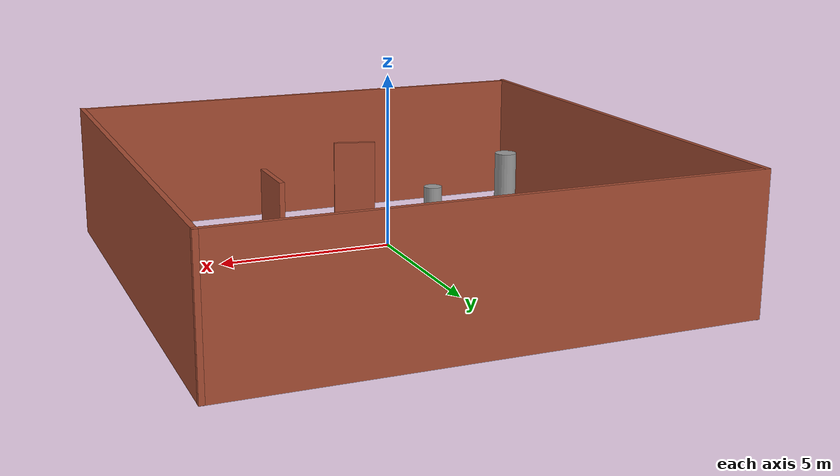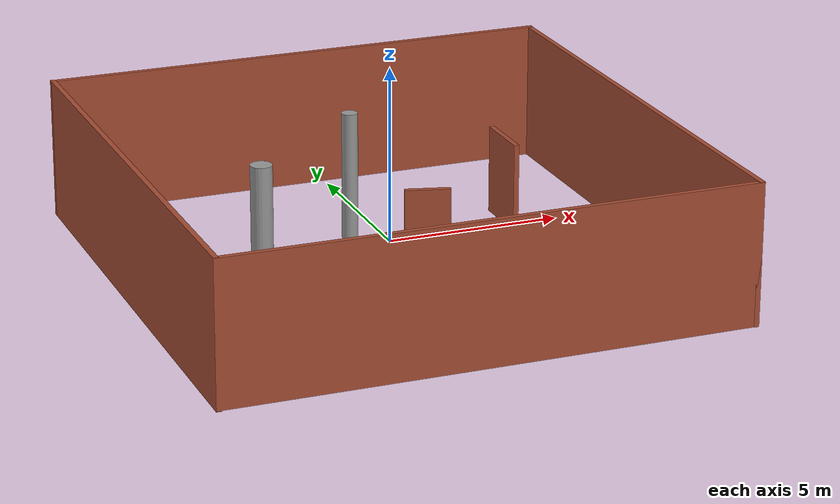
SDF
<?xml version='1.0'?>
<sdf version='1.5'>
  <model name='house'>
    <link name='Wall_1'>
      <pose frame=''>-7.425 0 0 0 0 -1.5708</pose>
      <self_collide>0</self_collide>
      <kinematic>0</kinematic>
      <visual name='Wall_1_Visual'>
        <pose frame=''>0 0 1.25 0 -0 0</pose>
        <geometry>
          <box>
            <size>15 0.15 4.07416</size>
          </box>
        </geometry>
        <material>
          <script>
            <uri>file://media/materials/scripts/gazebo.material</uri>
            <name>Gazebo/Bricks</name>
          </script>
          <ambient>1 1 1 1</ambient>
          <diffuse>1 1 1 1</diffuse>
          <specular>0.2 0.2 0.2 1</specular>
          <emissive>0 0 0 1</emissive>
          <shader type='pixel'/>
        </material>
        <cast_shadows>1</cast_shadows>
        <transparency>0</transparency>
      </visual>
      <collision name='Wall_1_Collision'>
        <laser_retro>0</laser_retro>
        <max_contacts>10</max_contacts>
        <pose frame=''>0 0 1.25 0 -0 0</pose>
        <geometry>
          <box>
            <size>15 0.15 4.07416</size>
          </box>
        </geometry>
        <surface>
          <friction>
            <ode>
              <mu>1</mu>
              <mu2>1</mu2>
              <fdir1>0 0 0</fdir1>
              <slip1>0</slip1>
              <slip2>0</slip2>
            </ode>
          </friction>
          <bounce>
            <restitution_coefficient>0</restitution_coefficient>
            <threshold>1e+06</threshold>
          </bounce>
          <contact>
            <collide_without_contact>0</collide_without_contact>
            <collide_without_contact_bitmask>1</collide_without_contact_bitmask>
            <collide_bitmask>1</collide_bitmask>
            <ode>
              <soft_cfm>0</soft_cfm>
              <soft_erp>0.2</soft_erp>
              <kp>1e+13</kp>
              <kd>1</kd>
              <max_vel>0.01</max_vel>
              <min_depth>0</min_depth>
            </ode>
            <bullet>
              <split_impulse>1</split_impulse>
              <split_impulse_penetration_threshold>-0.01</split_impulse_penetration_threshold>
              <soft_cfm>0</soft_cfm>
              <soft_erp>0.2</soft_erp>
              <kp>1e+13</kp>
              <kd>1</kd>
            </bullet>
          </contact>
        </surface>
      </collision>
    </link>
    <link name='Wall_10'>
      <pose frame=''>-0.035081 -2.84496 0 0 0 -0.261799</pose>
      <self_collide>0</self_collide>
      <kinematic>0</kinematic>
      <visual name='Wall_10_Visual'>
        <pose frame=''>0 0 1.25 0 -0 0</pose>
        <geometry>
          <box>
            <size>1.25 0.15 2.5</size>
          </box>
        </geometry>
        <material>
          <script>
            <uri>file://media/materials/scripts/gazebo.material</uri>
            <name>Gazebo/Bricks</name>
          </script>
          <ambient>1 1 1 1</ambient>
          <diffuse>1 1 1 1</diffuse>
          <specular>0.2 0.2 0.2 1</specular>
          <emissive>0 0 0 1</emissive>
          <shader type='pixel'/>
        </material>
        <cast_shadows>1</cast_shadows>
        <transparency>0</transparency>
      </visual>
      <collision name='Wall_10_Collision'>
        <laser_retro>0</laser_retro>
        <max_contacts>10</max_contacts>
        <pose frame=''>0 0 1.25 0 -0 0</pose>
        <geometry>
          <box>
            <size>1.25 0.15 2.5</size>
          </box>
        </geometry>
        <surface>
          <friction>
            <ode>
              <mu>1</mu>
              <mu2>1</mu2>
              <fdir1>0 0 0</fdir1>
              <slip1>0</slip1>
              <slip2>0</slip2>
            </ode>
          </friction>
          <bounce>
            <restitution_coefficient>0</restitution_coefficient>
            <threshold>1e+06</threshold>
          </bounce>
          <contact>
            <collide_without_contact>0</collide_without_contact>
            <collide_without_contact_bitmask>1</collide_without_contact_bitmask>
            <collide_bitmask>1</collide_bitmask>
            <ode>
              <soft_cfm>0</soft_cfm>
              <soft_erp>0.2</soft_erp>
              <kp>1e+13</kp>
              <kd>1</kd>
              <max_vel>0.01</max_vel>
              <min_depth>0</min_depth>
            </ode>
            <bullet>
              <split_impulse>1</split_impulse>
              <split_impulse_penetration_threshold>-0.01</split_impulse_penetration_threshold>
              <soft_cfm>0</soft_cfm>
              <soft_erp>0.2</soft_erp>
              <kp>1e+13</kp>
              <kd>1</kd>
            </bullet>
          </contact>
        </surface>
      </collision>
    </link>
    <link name='Wall_2'>
      <pose frame=''>0 -7.425 0 0 -0 0</pose>
      <self_collide>0</self_collide>
      <kinematic>0</kinematic>
      <visual name='Wall_2_Visual'>
        <pose frame=''>0 0 1.25 0 -0 0</pose>
        <geometry>
          <box>
            <size>15 0.15 4.03119</size>
          </box>
        </geometry>
        <material>
          <script>
            <uri>file://media/materials/scripts/gazebo.material</uri>
            <name>Gazebo/Bricks</name>
          </script>
          <ambient>1 1 1 1</ambient>
          <diffuse>1 1 1 1</diffuse>
          <specular>0.2 0.2 0.2 1</specular>
          <emissive>0 0 0 1</emissive>
          <shader type='pixel'/>
        </material>
        <cast_shadows>1</cast_shadows>
        <transparency>0</transparency>
      </visual>
      <collision name='Wall_2_Collision'>
        <laser_retro>0</laser_retro>
        <max_contacts>10</max_contacts>
        <pose frame=''>0 0 1.25 0 -0 0</pose>
        <geometry>
          <box>
            <size>15 0.15 4.03119</size>
          </box>
        </geometry>
        <surface>
          <friction>
            <ode>
              <mu>1</mu>
              <mu2>1</mu2>
              <fdir1>0 0 0</fdir1>
              <slip1>0</slip1>
              <slip2>0</slip2>
            </ode>
          </friction>
          <bounce>
            <restitution_coefficient>0</restitution_coefficient>
            <threshold>1e+06</threshold>
          </bounce>
          <contact>
            <collide_without_contact>0</collide_without_contact>
            <collide_without_contact_bitmask>1</collide_without_contact_bitmask>
            <collide_bitmask>1</collide_bitmask>
            <ode>
              <soft_cfm>0</soft_cfm>
              <soft_erp>0.2</soft_erp>
              <kp>1e+13</kp>
              <kd>1</kd>
              <max_vel>0.01</max_vel>
              <min_depth>0</min_depth>
            </ode>
            <bullet>
              <split_impulse>1</split_impulse>
              <split_impulse_penetration_threshold>-0.01</split_impulse_penetration_threshold>
              <soft_cfm>0</soft_cfm>
              <soft_erp>0.2</soft_erp>
              <kp>1e+13</kp>
              <kd>1</kd>
            </bullet>
          </contact>
        </surface>
      </collision>
    </link>
    <link name='Wall_3'>
      <pose frame=''>7.425 0 0 0 -0 1.5708</pose>
      <self_collide>0</self_collide>
      <kinematic>0</kinematic>
      <visual name='Wall_3_Visual'>
        <pose frame=''>0 0 1.25 0 -0 0</pose>
        <geometry>
          <box>
            <size>15 0.15 4.05225</size>
          </box>
        </geometry>
        <material>
          <script>
            <uri>file://media/materials/scripts/gazebo.material</uri>
            <name>Gazebo/Bricks</name>
          </script>
          <ambient>1 1 1 1</ambient>
          <diffuse>1 1 1 1</diffuse>
          <specular>0.2 0.2 0.2 1</specular>
          <emissive>0 0 0 1</emissive>
          <shader type='pixel'/>
        </material>
        <cast_shadows>1</cast_shadows>
        <transparency>0</transparency>
      </visual>
      <collision name='Wall_3_Collision'>
        <laser_retro>0</laser_retro>
        <max_contacts>10</max_contacts>
        <pose frame=''>0 0 1.25 0 -0 0</pose>
        <geometry>
          <box>
            <size>15 0.15 4.05225</size>
          </box>
        </geometry>
        <surface>
          <friction>
            <ode>
              <mu>1</mu>
              <mu2>1</mu2>
              <fdir1>0 0 0</fdir1>
              <slip1>0</slip1>
              <slip2>0</slip2>
            </ode>
          </friction>
          <bounce>
            <restitution_coefficient>0</restitution_coefficient>
            <threshold>1e+06</threshold>
          </bounce>
          <contact>
            <collide_without_contact>0</collide_without_contact>
            <collide_without_contact_bitmask>1</collide_without_contact_bitmask>
            <collide_bitmask>1</collide_bitmask>
            <ode>
              <soft_cfm>0</soft_cfm>
              <soft_erp>0.2</soft_erp>
              <kp>1e+13</kp>
              <kd>1</kd>
              <max_vel>0.01</max_vel>
              <min_depth>0</min_depth>
            </ode>
            <bullet>
              <split_impulse>1</split_impulse>
              <split_impulse_penetration_threshold>-0.01</split_impulse_penetration_threshold>
              <soft_cfm>0</soft_cfm>
              <soft_erp>0.2</soft_erp>
              <kp>1e+13</kp>
              <kd>1</kd>
            </bullet>
          </contact>
        </surface>
      </collision>
    </link>
    <link name='Wall_4'>
      <pose frame=''>0 7.425 0 0 -0 3.14159</pose>
      <self_collide>0</self_collide>
      <kinematic>0</kinematic>
      <visual name='Wall_4_Visual'>
        <pose frame=''>0 0 1.25 0 -0 0</pose>
        <geometry>
          <box>
            <size>15 0.15 4.06246</size>
          </box>
        </geometry>
        <material>
          <script>
            <uri>file://media/materials/scripts/gazebo.material</uri>
            <name>Gazebo/Bricks</name>
          </script>
          <ambient>1 1 1 1</ambient>
          <diffuse>1 1 1 1</diffuse>
          <specular>0.2 0.2 0.2 1</specular>
          <emissive>0 0 0 1</emissive>
          <shader type='pixel'/>
        </material>
        <cast_shadows>1</cast_shadows>
        <transparency>0</transparency>
      </visual>
      <collision name='Wall_4_Collision'>
        <laser_retro>0</laser_retro>
        <max_contacts>10</max_contacts>
        <pose frame=''>0 0 1.25 0 -0 0</pose>
        <geometry>
          <box>
            <size>15 0.15 4.06246</size>
          </box>
        </geometry>
        <surface>
          <friction>
            <ode>
              <mu>1</mu>
              <mu2>1</mu2>
              <fdir1>0 0 0</fdir1>
              <slip1>0</slip1>
              <slip2>0</slip2>
            </ode>
          </friction>
          <bounce>
            <restitution_coefficient>0</restitution_coefficient>
            <threshold>1e+06</threshold>
          </bounce>
          <contact>
            <collide_without_contact>0</collide_without_contact>
            <collide_without_contact_bitmask>1</collide_without_contact_bitmask>
            <collide_bitmask>1</collide_bitmask>
            <ode>
              <soft_cfm>0</soft_cfm>
              <soft_erp>0.2</soft_erp>
              <kp>1e+13</kp>
              <kd>1</kd>
              <max_vel>0.01</max_vel>
              <min_depth>0</min_depth>
            </ode>
            <bullet>
              <split_impulse>1</split_impulse>
              <split_impulse_penetration_threshold>-0.01</split_impulse_penetration_threshold>
              <soft_cfm>0</soft_cfm>
              <soft_erp>0.2</soft_erp>
              <kp>1e+13</kp>
              <kd>1</kd>
            </bullet>
          </contact>
        </surface>
      </collision>
    </link>
    <link name='Wall_8'>
      <pose frame=''>3.56967 0.401143 0 0 -0 1.5708</pose>
      <self_collide>0</self_collide>
      <kinematic>0</kinematic>
      <visual name='Wall_8_Visual'>
        <pose frame=''>0 0 1.25 0 -0 0</pose>
        <geometry>
          <box>
            <size>1.75 0.15 2.5</size>
          </box>
        </geometry>
        <material>
          <script>
            <uri>file://media/materials/scripts/gazebo.material</uri>
            <name>Gazebo/Bricks</name>
          </script>
          <ambient>1 1 1 1</ambient>
          <diffuse>1 1 1 1</diffuse>
          <specular>0.2 0.2 0.2 1</specular>
          <emissive>0 0 0 1</emissive>
          <shader type='pixel'/>
        </material>
        <cast_shadows>1</cast_shadows>
        <transparency>0</transparency>
      </visual>
      <collision name='Wall_8_Collision'>
        <laser_retro>0</laser_retro>
        <max_contacts>10</max_contacts>
        <pose frame=''>0 0 1.25 0 -0 0</pose>
        <geometry>
          <box>
            <size>1.75 0.15 2.5</size>
          </box>
        </geometry>
        <surface>
          <friction>
            <ode>
              <mu>1</mu>
              <mu2>1</mu2>
              <fdir1>0 0 0</fdir1>
              <slip1>0</slip1>
              <slip2>0</slip2>
            </ode>
          </friction>
          <bounce>
            <restitution_coefficient>0</restitution_coefficient>
            <threshold>1e+06</threshold>
          </bounce>
          <contact>
            <collide_without_contact>0</collide_without_contact>
            <collide_without_contact_bitmask>1</collide_without_contact_bitmask>
            <collide_bitmask>1</collide_bitmask>
            <ode>
              <soft_cfm>0</soft_cfm>
              <soft_erp>0.2</soft_erp>
              <kp>1e+13</kp>
              <kd>1</kd>
              <max_vel>0.01</max_vel>
              <min_depth>0</min_depth>
            </ode>
            <bullet>
              <split_impulse>1</split_impulse>
              <split_impulse_penetration_threshold>-0.01</split_impulse_penetration_threshold>
              <soft_cfm>0</soft_cfm>
              <soft_erp>0.2</soft_erp>
              <kp>1e+13</kp>
              <kd>1</kd>
            </bullet>
          </contact>
        </surface>
      </collision>
    </link>
    <link name='link_0'>
      <pose frame=''>-3.56905 0.427961 0.5 0 -0 0</pose>
      <self_collide>0</self_collide>
      <kinematic>0</kinematic>
      <visual name='visual'>
        <pose frame=''>0 0 0 0 -0 0</pose>
        <geometry>
          <cylinder>
            <radius>0.310375</radius>
            <length>4.10892</length>
          </cylinder>
        </geometry>
        <material>
          <lighting>1</lighting>
          <script>
            <uri>file://media/materials/scripts/gazebo.material</uri>
            <name>Gazebo/Grey</name>
          </script>
          <ambient>0.3 0.3 0.3 1</ambient>
          <diffuse>0.7 0.7 0.7 1</diffuse>
          <specular>0.01 0.01 0.01 1</specular>
          <emissive>0 0 0 1</emissive>
          <shader type='pixel'/>
        </material>
        <cast_shadows>1</cast_shadows>
        <transparency>0</transparency>
      </visual>
      <collision name='collision'>
        <laser_retro>0</laser_retro>
        <max_contacts>10</max_contacts>
        <pose frame=''>0 0 0 0 -0 0</pose>
        <geometry>
          <cylinder>
            <radius>0.310375</radius>
            <length>4.10892</length>
          </cylinder>
        </geometry>
        <surface>
          <friction>
            <ode>
              <mu>1</mu>
              <mu2>1</mu2>
              <fdir1>0 0 0</fdir1>
              <slip1>0</slip1>
              <slip2>0</slip2>
            </ode>
          </friction>
          <bounce>
            <restitution_coefficient>0</restitution_coefficient>
            <threshold>1e+06</threshold>
          </bounce>
          <contact>
            <collide_without_contact>0</collide_without_contact>
            <collide_without_contact_bitmask>1</collide_without_contact_bitmask>
            <collide_bitmask>1</collide_bitmask>
            <ode>
              <soft_cfm>0</soft_cfm>
              <soft_erp>0.2</soft_erp>
              <kp>1e+13</kp>
              <kd>1</kd>
              <max_vel>0.01</max_vel>
              <min_depth>0</min_depth>
            </ode>
            <bullet>
              <split_impulse>1</split_impulse>
              <split_impulse_penetration_threshold>-0.01</split_impulse_penetration_threshold>
              <soft_cfm>0</soft_cfm>
              <soft_erp>0.2</soft_erp>
              <kp>1e+13</kp>
              <kd>1</kd>
            </bullet>
          </contact>
        </surface>
      </collision>
    </link>
    <link name='link_1'>
      <pose frame=''>0.148601 3.5461 0.5 0 -0 0</pose>
      <self_collide>0</self_collide>
      <kinematic>0</kinematic>
      <visual name='visual'>
        <pose frame=''>0 0 0 0 -0 0</pose>
        <geometry>
          <cylinder>
            <radius>0.233179</radius>
            <length>4.22408</length>
          </cylinder>
        </geometry>
        <material>
          <lighting>1</lighting>
          <script>
            <uri>file://media/materials/scripts/gazebo.material</uri>
            <name>Gazebo/Grey</name>
          </script>
          <ambient>0.3 0.3 0.3 1</ambient>
          <diffuse>0.7 0.7 0.7 1</diffuse>
          <specular>0.01 0.01 0.01 1</specular>
          <emissive>0 0 0 1</emissive>
          <shader type='pixel'/>
        </material>
        <cast_shadows>1</cast_shadows>
        <transparency>0</transparency>
      </visual>
      <collision name='collision'>
        <laser_retro>0</laser_retro>
        <max_contacts>10</max_contacts>
        <pose frame=''>0 0 0 0 -0 0</pose>
        <geometry>
          <cylinder>
            <radius>0.233179</radius>
            <length>4.22408</length>
          </cylinder>
        </geometry>
        <surface>
          <friction>
            <ode>
              <mu>1</mu>
              <mu2>1</mu2>
              <fdir1>0 0 0</fdir1>
              <slip1>0</slip1>
              <slip2>0</slip2>
            </ode>
          </friction>
          <bounce>
            <restitution_coefficient>0</restitution_coefficient>
            <threshold>1e+06</threshold>
          </bounce>
          <contact>
            <collide_without_contact>0</collide_without_contact>
            <collide_without_contact_bitmask>1</collide_without_contact_bitmask>
            <collide_bitmask>1</collide_bitmask>
            <ode>
              <soft_cfm>0</soft_cfm>
              <soft_erp>0.2</soft_erp>
              <kp>1e+13</kp>
              <kd>1</kd>
              <max_vel>0.01</max_vel>
              <min_depth>0</min_depth>
            </ode>
            <bullet>
              <split_impulse>1</split_impulse>
              <split_impulse_penetration_threshold>-0.01</split_impulse_penetration_threshold>
              <soft_cfm>0</soft_cfm>
              <soft_erp>0.2</soft_erp>
              <kp>1e+13</kp>
              <kd>1</kd>
            </bullet>
          </contact>
        </surface>
      </collision>
    </link>
    <static>1</static>
    <allow_auto_disable>1</allow_auto_disable>
  </model>
</sdf>
